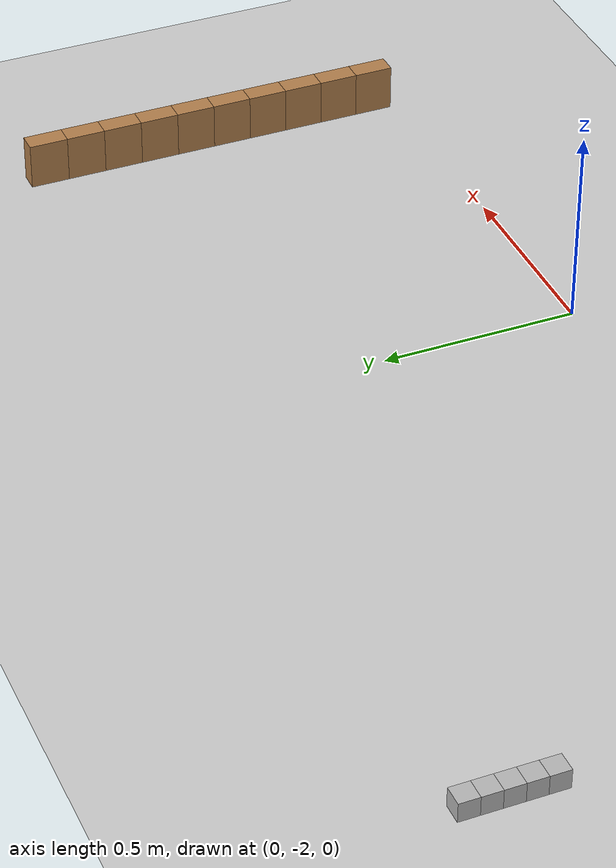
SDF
<sdf version="1.5">
 <world name="default">
  <plugin name="gazebo_ros_state" filename="libgazebo_ros_state.so">
   <ros>
    <namespace>/gazebo_state</namespace>
    <argument>--ros-args --remap model_states:=model_states_demo</argument>
    <argument>--ros-args --remap link_states:=link_states_demo</argument>
   </ros>
   <update_rate>50.0</update_rate>
  </plugin>
  <plugin name="ros_link_attacher_plugin" filename="libgazebo_ros_link_attacher_plugin.so"/>
  <light name="sun" type="directional">
   <pose>0 0 10 0 -0 0</pose>
   <diffuse>0.8 0.8 0.8 1</diffuse>
   <specular>0.2 0.2 0.2 1</specular>
   <attenuation>
    <range>1000</range>
    <constant>0.9</constant>
    <linear>0.01</linear>
    <quadratic>0.001</quadratic>
   </attenuation>
   <direction>-0.5 0.1 -0.9</direction>
   <spot><inner_angle>0</inner_angle><outer_angle>0</outer_angle><falloff>0</falloff></spot>
  </light>
  <model name="cube">
   <pose>-1.5 -1.0 .1 0 0 0</pose>
   <link name="link">
    <collision name="collision"><geometry><box><size>0.02 0.02 0.02</size></box></geometry></collision>
    <visual name="visual"><geometry><box><size>0.02 0.02 0.02</size></box></geometry></visual>
   </link>
  </model>
  <model name="cube_0">
   <pose>-1.5 -1 .1 0 0 0</pose>
   <link name="link">
    <collision name="collision"><geometry><box><size>0.05 0.05 0.05</size></box></geometry></collision>
    <visual name="visual"><geometry><box><size>0.05 0.05 0.05</size></box></geometry></visual>
   </link>
  </model>
  <model name="cube_1">
   <pose>-1.5 -1.05 .1 0 0 0</pose>
   <link name="link">
    <collision name="collision"><geometry><box><size>0.05 0.05 0.05</size></box></geometry></collision>
    <visual name="visual"><geometry><box><size>0.05 0.05 0.05</size></box></geometry></visual>
   </link>
  </model>
  <model name="cube_2">
   <pose>-1.5 -1.1 .1 0 0 0</pose>
   <link name="link">
    <collision name="collision"><geometry><box><size>0.05 0.05 0.05</size></box></geometry></collision>
    <visual name="visual"><geometry><box><size>0.05 0.05 0.05</size></box></geometry></visual>
   </link>
  </model>
  <model name="cube_3">
   <pose>-1.5 -1.15 .1 0 0 0</pose>
   <link name="link">
    <collision name="collision"><geometry><box><size>0.05 0.05 0.05</size></box></geometry></collision>
    <visual name="visual"><geometry><box><size>0.05 0.05 0.05</size></box></geometry></visual>
   </link>
  </model>
  <model name="cube_4">
   <pose>-1.5 -1.2 .1 0 0 0</pose>
   <link name="link">
    <collision name="collision"><geometry><box><size>0.05 0.05 0.05</size></box></geometry></collision>
    <visual name="visual"><geometry><box><size>0.05 0.05 0.05</size></box></geometry></visual>
   </link>
  </model>
  <model name="box_0">
   <pose>1.0 -1 .1 0 0 0</pose>
   <link name="link">
    <collision name="collision"><geometry><box><size>0.05 0.1 0.12</size></box></geometry></collision>
    <visual name="visual">
     <geometry><box><size>0.05 0.1 0.12</size></box></geometry>
     <material>
      <script><uri>file://media/materials/scripts/gazebo.material</uri><name>Gazebo/Wood</name></script>
     </material>
    </visual>
   </link>
  </model>
  <model name="box_1">
   <pose>1.0 -1.1 .1 0 0 0</pose>
   <link name="link">
    <collision name="collision"><geometry><box><size>0.05 0.1 0.12</size></box></geometry></collision>
    <visual name="visual">
     <geometry><box><size>0.05 0.1 0.12</size></box></geometry>
     <material>
      <script><uri>file://media/materials/scripts/gazebo.material</uri><name>Gazebo/Wood</name></script>
     </material>
    </visual>
   </link>
  </model>
  <model name="box_2">
   <pose>1.0 -1.2 .1 0 0 0</pose>
   <link name="link">
    <collision name="collision"><geometry><box><size>0.05 0.1 0.12</size></box></geometry></collision>
    <visual name="visual">
     <geometry><box><size>0.05 0.1 0.12</size></box></geometry>
     <material>
      <script><uri>file://media/materials/scripts/gazebo.material</uri><name>Gazebo/Wood</name></script>
     </material>
    </visual>
   </link>
  </model>
  <model name="box_3">
   <pose>1.0 -1.3 .1 0 0 0</pose>
   <link name="link">
    <collision name="collision"><geometry><box><size>0.05 0.1 0.12</size></box></geometry></collision>
    <visual name="visual">
     <geometry><box><size>0.05 0.1 0.12</size></box></geometry>
     <material>
      <script><uri>file://media/materials/scripts/gazebo.material</uri><name>Gazebo/Wood</name></script>
     </material>
    </visual>
   </link>
  </model>
  <model name="box_4">
   <pose>1.0 -1.4 .1 0 0 0</pose>
   <link name="link">
    <collision name="collision"><geometry><box><size>0.05 0.1 0.12</size></box></geometry></collision>
    <visual name="visual">
     <geometry><box><size>0.05 0.1 0.12</size></box></geometry>
     <material>
      <script><uri>file://media/materials/scripts/gazebo.material</uri><name>Gazebo/Wood</name></script>
     </material>
    </visual>
   </link>
  </model>
  <model name="box_5">
   <pose>1.0 -1.5 .1 0 0 0</pose>
   <link name="link">
    <collision name="collision"><geometry><box><size>0.05 0.1 0.12</size></box></geometry></collision>
    <visual name="visual">
     <geometry><box><size>0.05 0.1 0.12</size></box></geometry>
     <material>
      <script><uri>file://media/materials/scripts/gazebo.material</uri><name>Gazebo/Wood</name></script>
     </material>
    </visual>
   </link>
  </model>
  <model name="box_6">
   <pose>1.0 -1.6 .1 0 0 0</pose>
   <link name="link">
    <collision name="collision"><geometry><box><size>0.05 0.1 0.12</size></box></geometry></collision>
    <visual name="visual">
     <geometry><box><size>0.05 0.1 0.12</size></box></geometry>
     <material>
      <script><uri>file://media/materials/scripts/gazebo.material</uri><name>Gazebo/Wood</name></script>
     </material>
    </visual>
   </link>
  </model>
  <model name="box_7">
   <pose>1.0 -1.7 .1 0 0 0</pose>
   <link name="link">
    <collision name="collision"><geometry><box><size>0.05 0.1 0.12</size></box></geometry></collision>
    <visual name="visual">
     <geometry><box><size>0.05 0.1 0.12</size></box></geometry>
     <material>
      <script><uri>file://media/materials/scripts/gazebo.material</uri><name>Gazebo/Wood</name></script>
     </material>
    </visual>
   </link>
  </model>
  <model name="box_8">
   <pose>1.0 -1.8 .1 0 0 0</pose>
   <link name="link">
    <collision name="collision"><geometry><box><size>0.05 0.1 0.12</size></box></geometry></collision>
    <visual name="visual">
     <geometry><box><size>0.05 0.1 0.12</size></box></geometry>
     <material>
      <script><uri>file://media/materials/scripts/gazebo.material</uri><name>Gazebo/Wood</name></script>
     </material>
    </visual>
   </link>
  </model>
  <model name="box_9">
   <pose>1.0 -1.9 .1 0 0 0</pose>
   <link name="link">
    <collision name="collision"><geometry><box><size>0.05 0.1 0.12</size></box></geometry></collision>
    <visual name="visual">
     <geometry><box><size>0.05 0.1 0.12</size></box></geometry>
     <material>
      <script><uri>file://media/materials/scripts/gazebo.material</uri><name>Gazebo/Wood</name></script>
     </material>
    </visual>
   </link>
  </model>
  <model name="box_10">
   <pose>1.0 -1.9 .1 0 0 0</pose>
   <link name="link">
    <collision name="collision"><geometry><box><size>0.05 0.1 0.12</size></box></geometry></collision>
    <visual name="visual">
     <geometry><box><size>0.05 0.1 0.12</size></box></geometry>
     <material>
      <script><uri>file://media/materials/scripts/gazebo.material</uri><name>Gazebo/Wood</name></script>
     </material>
    </visual>
   </link>
  </model>
  <model name="box_11">
   <pose>1.0 -1.9 .1 0 0 0</pose>
   <link name="link">
    <collision name="collision"><geometry><box><size>0.05 0.1 0.12</size></box></geometry></collision>
    <visual name="visual">
     <geometry><box><size>0.05 0.1 0.12</size></box></geometry>
     <material>
      <script><uri>file://media/materials/scripts/gazebo.material</uri><name>Gazebo/Wood</name></script>
     </material>
    </visual>
   </link>
  </model>
  <model name="box_12">
   <pose>1.0 -1.9 .1 0 0 0</pose>
   <link name="link">
    <collision name="collision"><geometry><box><size>0.05 0.1 0.12</size></box></geometry></collision>
    <visual name="visual">
     <geometry><box><size>0.05 0.1 0.12</size></box></geometry>
     <material>
      <script><uri>file://media/materials/scripts/gazebo.material</uri><name>Gazebo/Wood</name></script>
     </material>
    </visual>
   </link>
  </model>
  <model name="box_13">
   <pose>1.0 -1.9 .1 0 0 0</pose>
   <link name="link">
    <collision name="collision"><geometry><box><size>0.05 0.1 0.12</size></box></geometry></collision>
    <visual name="visual">
     <geometry><box><size>0.05 0.1 0.12</size></box></geometry>
     <material>
      <script><uri>file://media/materials/scripts/gazebo.material</uri><name>Gazebo/Wood</name></script>
     </material>
    </visual>
   </link>
  </model>
  <model name="box_14">
   <pose>1.0 -1.9 .1 0 0 0</pose>
   <link name="link">
    <collision name="collision"><geometry><box><size>0.05 0.1 0.12</size></box></geometry></collision>
    <visual name="visual">
     <geometry><box><size>0.05 0.1 0.12</size></box></geometry>
     <material>
      <script><uri>file://media/materials/scripts/gazebo.material</uri><name>Gazebo/Wood</name></script>
     </material>
    </visual>
   </link>
  </model>
  <model name="box_15">
   <pose>1.0 -1.9 .1 0 0 0</pose>
   <link name="link">
    <collision name="collision"><geometry><box><size>0.05 0.1 0.12</size></box></geometry></collision>
    <visual name="visual">
     <geometry><box><size>0.05 0.1 0.12</size></box></geometry>
     <material>
      <script><uri>file://media/materials/scripts/gazebo.material</uri><name>Gazebo/Wood</name></script>
     </material>
    </visual>
   </link>
  </model>
  <model name="box_16">
   <pose>1.0 -1.9 .1 0 0 0</pose>
   <link name="link">
    <collision name="collision"><geometry><box><size>0.05 0.1 0.12</size></box></geometry></collision>
    <visual name="visual">
     <geometry><box><size>0.05 0.1 0.12</size></box></geometry>
     <material>
      <script><uri>file://media/materials/scripts/gazebo.material</uri><name>Gazebo/Wood</name></script>
     </material>
    </visual>
   </link>
  </model>
  <model name="box_17">
   <pose>1.0 -1.9 .1 0 0 0</pose>
   <link name="link">
    <collision name="collision"><geometry><box><size>0.05 0.1 0.12</size></box></geometry></collision>
    <visual name="visual">
     <geometry><box><size>0.05 0.1 0.12</size></box></geometry>
     <material>
      <script><uri>file://media/materials/scripts/gazebo.material</uri><name>Gazebo/Wood</name></script>
     </material>
    </visual>
   </link>
  </model>
  <model name="box_18">
   <pose>1.0 -1.9 .1 0 0 0</pose>
   <link name="link">
    <collision name="collision"><geometry><box><size>0.05 0.1 0.12</size></box></geometry></collision>
    <visual name="visual">
     <geometry><box><size>0.05 0.1 0.12</size></box></geometry>
     <material>
      <script><uri>file://media/materials/scripts/gazebo.material</uri><name>Gazebo/Wood</name></script>
     </material>
    </visual>
   </link>
  </model>
  <model name="box_19">
   <pose>1.0 -1.9 .1 0 0 0</pose>
   <link name="link">
    <collision name="collision"><geometry><box><size>0.05 0.1 0.12</size></box></geometry></collision>
    <visual name="visual">
     <geometry><box><size>0.05 0.1 0.12</size></box></geometry>
     <material>
      <script><uri>file://media/materials/scripts/gazebo.material</uri><name>Gazebo/Wood</name></script>
     </material>
    </visual>
   </link>
  </model>
  <model name="ground_plane">
   <static>1</static>
   <link name="link">
    <collision name="collision">
     <geometry><plane><normal>0 0 1</normal><size>100 100</size></plane></geometry>
     <surface><friction><ode><mu>100</mu><mu2>50</mu2></ode></friction></surface>
    </collision>
    <visual name="visual">
     <cast_shadows>0</cast_shadows>
     <geometry><plane><normal>0 0 1</normal><size>100 100</size></plane></geometry>
     <material>
      <script><uri>file://media/materials/scripts/gazebo.material</uri><name>Gazebo/Grey</name></script>
     </material>
    </visual>
   </link>
  </model>
  <gravity>0 0 -9.8</gravity>
  <magnetic_field>6e-06 2.3e-05 -4.2e-05</magnetic_field>
  <atmosphere type="adiabatic"/>
  <physics type="ode">
   <gravity>0.000000 0.000000 -9.810000</gravity>
   <ode>
    <solver><type>quick</type><iters>20</iters><sor>0.2500000</sor></solver>
    <constraints>
     <cfm>0.000000</cfm>
     <erp>0.200000</erp>
     <contact_max_correcting_vel>100.000000</contact_max_correcting_vel>
     <contact_surface_layer>0.000000</contact_surface_layer>
    </constraints>
   </ode>
   <real_time_update_rate>1000.000000</real_time_update_rate>
   <max_step_size>0.001000</max_step_size>
   <real_time_factor>1.000000</real_time_factor>
   <max_contacts>20</max_contacts>
  </physics>
  <scene><ambient>0.5 0.5 0.5 1</ambient><background>0.7 0.7 0.7 1</background><shadows>0</shadows></scene>
  <audio><device>default</device></audio>
  <spherical_coordinates>
   <surface_model>EARTH_WGS84</surface_model>
   <latitude_deg>0</latitude_deg>
   <longitude_deg>0</longitude_deg>
   <elevation>0</elevation>
   <heading_deg>0</heading_deg>
  </spherical_coordinates>
 </world>
</sdf>
